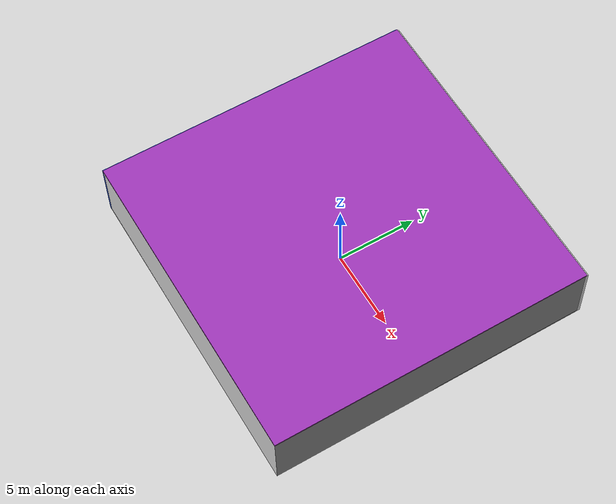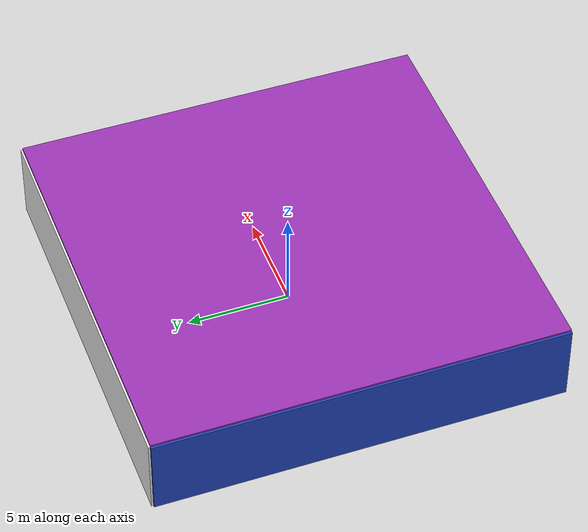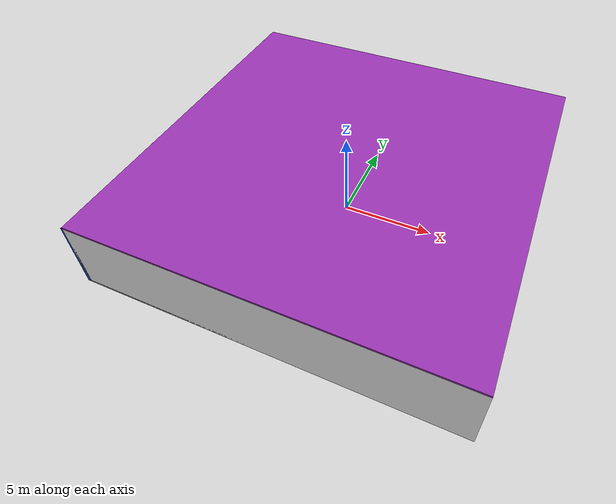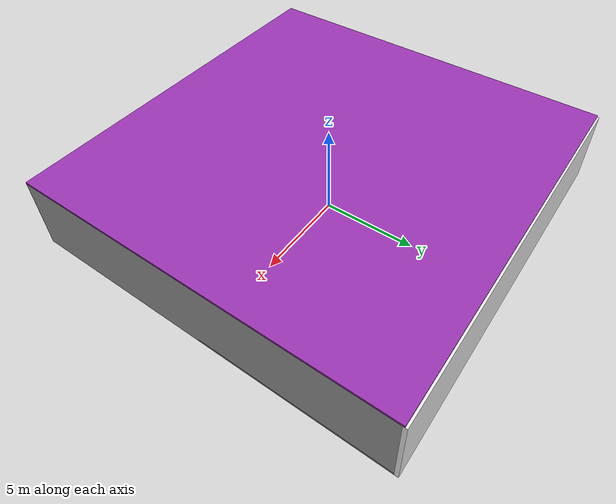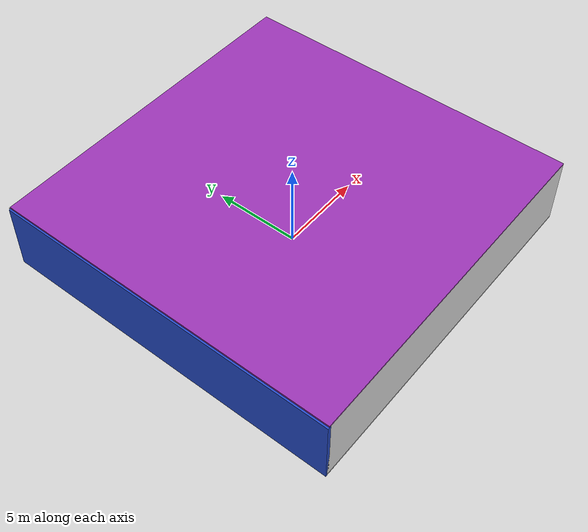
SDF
<sdf version="1.4">
 <world name="default">
  <physics type="ode">
   <max_step_size>0.001</max_step_size>
   <real_time_factor>1</real_time_factor>
   <real_time_update_rate>1000</real_time_update_rate>
   <gravity>0 0 -9.8</gravity>
  </physics>
  <scene><ambient>0.4 0.4 0.4 1</ambient><background>0.7 0.7 0.7 1</background><shadows>1</shadows></scene>
  <model name="Surrounding">
   <static>1</static>
   <link name="Ceiling">
    <collision name="Ceiling_Collision"><geometry><box><size>20 20 0.1</size></box></geometry></collision>
    <visual name="Ceiling_Visual">
     <geometry><box><size>20 20 0.1</size></box></geometry>
     <material>
      <script><uri>file://media/materials/scripts/gazebo.material</uri><name>Gazebo/PurpleGlow</name></script>
     </material>
    </visual>
    <pose>0 0 4.05 0 0 0</pose>
   </link>
   <link name="Wall_South">
    <collision name="Wall_South_Collision">
     <geometry><box><size>20 0 4</size></box></geometry>
     <pose>0 0 2 0 -0 0</pose>
    </collision>
    <visual name="Wall_South_Visual">
     <pose>0 0 2 0 -0 0</pose>
     <geometry><box><size>20 0 4</size></box></geometry>
     <material>
      <script><uri>file://media/materials/scripts/gazebo.material</uri><name>Gazebo/White</name></script>
     </material>
    </visual>
    <velocity_decay><linear>0</linear><angular>0</angular></velocity_decay>
    <pose>0 -10 0 0 -0 0</pose>
   </link>
   <link name="Wall_East">
    <collision name="Wall_21_Collision">
     <geometry><box><size>20 0 4</size></box></geometry>
     <pose>0 0 2 0 -0 0</pose>
    </collision>
    <visual name="Wall_21_Visual">
     <pose>0 0 2 0 -0 0</pose>
     <geometry><box><size>20 0 4</size></box></geometry>
     <material>
      <script><uri>file://media/materials/scripts/gazebo.material</uri><name>Gazebo/Grey</name></script>
     </material>
    </visual>
    <velocity_decay><linear>0</linear><angular>0</angular></velocity_decay>
    <pose>10 0 0 0 -0 1.5708</pose>
   </link>
   <link name="Wall_North">
    <collision name="Wall_22_Collision">
     <geometry><box><size>20 0.2 4</size></box></geometry>
     <pose>0 0 2 0 -0 0</pose>
    </collision>
    <visual name="Wall_22_Visual">
     <pose>0 0 2 0 -0 0</pose>
     <geometry><box><size>20 0.2 4</size></box></geometry>
     <material>
      <script><uri>file://media/materials/scripts/gazebo.material</uri><name>Gazebo/White</name></script>
     </material>
    </visual>
    <velocity_decay><linear>0</linear><angular>0</angular></velocity_decay>
    <pose>0 10 0 0 -0 0</pose>
   </link>
   <link name="Wall_West">
    <collision name="Wall_23_Collision">
     <geometry><box><size>20 0.2 4</size></box></geometry>
     <pose>0 0 2 0 -0 0</pose>
    </collision>
    <visual name="Wall_23_Visual">
     <pose>0 0 2 0 -0 0</pose>
     <geometry><box><size>20 0.2 4</size></box></geometry>
     <material>
      <script><uri>file://media/materials/scripts/gazebo.material</uri><name>Gazebo/Blue</name></script>
     </material>
    </visual>
    <velocity_decay><linear>0</linear><angular>0</angular></velocity_decay>
    <pose>-10 0 0 0 0 -1.5708</pose>
   </link>
   <link name="Ground_link">
    <collision name="collision">
     <pose>0 0 .05 0 -0 0</pose>
     <geometry><box><size>20 20 0.1</size></box></geometry>
    </collision>
    <visual name="visual">
     <pose>0 0 .05 0 -0 0</pose>
     <geometry><box><size>20 20 0.1</size></box></geometry>
     <material>
      <script><uri>file://media/materials/scripts/gazebo.material</uri><name>Gazebo/GreyTransparent</name></script>
     </material>
    </visual>
   </link>
   <static>1</static>
  </model>
  <spherical_coordinates>
   <surface_model>EARTH_WGS84</surface_model>
   <latitude_deg>0</latitude_deg>
   <longitude_deg>0</longitude_deg>
   <elevation>0</elevation>
   <heading_deg>0</heading_deg>
  </spherical_coordinates>
  <light name="lightball_0" type="diffuse">
   <diffuse>0.8 0.8 0.8 1</diffuse>
   <specular>0.2 0.2 0.2 1</specular>
   <attenuation>
    <range>100</range>
    <constant>0.7</constant>
    <linear>0.01</linear>
    <quadratic>0.001</quadratic>
   </attenuation>
   <direction>-0.5 0.1 -0.9</direction>
   <pose>8.59217577541 -9.13612303144 3.33989320014 0 0 0</pose>
  </light>
  <light name="lightball_1" type="diffuse">
   <diffuse>0.8 0.8 0.8 1</diffuse>
   <specular>0.2 0.2 0.2 1</specular>
   <attenuation>
    <range>100</range>
    <constant>0.7</constant>
    <linear>0.01</linear>
    <quadratic>0.001</quadratic>
   </attenuation>
   <direction>-0.5 0.1 -0.9</direction>
   <pose>-4.77271377528 -8.78771781854 3.08778579016 0 0 0</pose>
  </light>
  <include>
   <uri>model://construction_cone</uri>
   <pose>-5.1928156906 3.80557690751 0 0 0 0.240957608918</pose>
  </include>
  <include><uri>model://table</uri><pose>-5.30339221974 7.46928630463 0 0 0 1.28414161461</pose></include>
  <include><uri>model://table</uri><pose>-1.22577693914 2.48568110782 0 0 0 0.196916606071</pose></include>
  <include><uri>model://cabinet</uri><pose>2.06916964643 3.80905081006 0 0 0 2.77509038573</pose></include>
  <include>
   <uri>model://robocup_3Dsim_goal</uri>
   <pose>5.29834224272 1.36629477626 0 0 0 0.675527270761</pose>
  </include>
  <include>
   <uri>model://robocup_3Dsim_goal</uri>
   <pose>7.19284989038 -6.78407969 0 0 0 2.46957812925</pose>
  </include>
  <include>
   <uri>model://construction_cone</uri>
   <pose>6.81340738591 -2.31775600361 0 0 0 1.46333758223</pose>
  </include>
 </world>
</sdf>

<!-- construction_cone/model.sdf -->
<sdf version="1.5">
  <model name="Construction Cone">
    <link name="link">
      <collision name="collision">
        <geometry>
          <mesh>
            <scale>10 10 10</scale>
            <uri>file://isr-testbed/construction_cone/meshes/construction_cone.dae</uri>
          </mesh>
        </geometry>
      </collision>
      <visual name="visual">
        <geometry>
          <mesh>
            <scale>10 10 10</scale>
            <uri>file://isr-testbed/construction_cone/meshes/construction_cone.dae</uri>
          </mesh>
        </geometry>
      </visual>
    </link>
  </model>
</sdf>

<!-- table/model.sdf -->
<sdf version="1.5">
  <model name="table">
    <static>true</static>
    <link name="link">
      <collision name="surface">
        <pose>0 0 1.0 0 0 0</pose>
        <geometry>
          <box>
            <size>1.5 0.8 0.03</size>
          </box>
        </geometry>
        <surface>
          <friction>
            <ode>
              <mu>0.6</mu>
              <mu2>0.6</mu2>
            </ode>
          </friction>
        </surface>
      </collision>
      <visual name="visual1">
        <pose>0 0 1.0 0 0 0</pose>
        <geometry>
          <box>
            <size>1.5 0.8 0.03</size>
          </box>
        </geometry>
        <material>
          <script>
            <uri>model://media/materials/scripts/gazebo.material</uri>
            <name>Gazebo/Wood</name>
          </script>
        </material>
      </visual>
      <collision name="front_left_leg">
        <pose>0.68 0.38 0.5 0 0 0</pose>
        <geometry>
          <cylinder>
            <radius>0.02</radius>
            <length>1.0</length>
          </cylinder>
        </geometry>
      </collision>
      <visual name="front_left_leg">
        <pose>0.68 0.38 0.5 0 0 0</pose>
        <geometry>
          <cylinder>
            <radius>0.02</radius>
            <length>1.0</length>
          </cylinder>
        </geometry>
        <material>
          <script>
            <uri>model://media/materials/scripts/gazebo.material</uri>
            <name>Gazebo/Grey</name>
          </script>
        </material>
      </visual>
      <collision name="front_right_leg">
        <pose>0.68 -0.38 0.5 0 0 0</pose>
        <geometry>
          <cylinder>
            <radius>0.02</radius>
            <length>1.0</length>
          </cylinder>
        </geometry>
      </collision>
      <visual name="front_right_leg">
        <pose>0.68 -0.38 0.5 0 0 0</pose>
        <geometry>
          <cylinder>
            <radius>0.02</radius>
            <length>1.0</length>
          </cylinder>
        </geometry>
        <material>
          <script>
            <uri>model://media/materials/scripts/gazebo.material</uri>
            <name>Gazebo/Grey</name>
          </script>
        </material>
      </visual>
      <collision name="back_right_leg">
        <pose>-0.68 -0.38 0.5 0 0 0</pose>
        <geometry>
          <cylinder>
            <radius>0.02</radius>
            <length>1.0</length>
          </cylinder>
        </geometry>
      </collision>
      <visual name="back_right_leg">
        <pose>-0.68 -0.38 0.5 0 0 0</pose>
        <geometry>
          <cylinder>
            <radius>0.02</radius>
            <length>1.0</length>
          </cylinder>
        </geometry>
        <material>
          <script>
            <uri>model://media/materials/scripts/gazebo.material</uri>
            <name>Gazebo/Grey</name>
          </script>
        </material>
      </visual>
      <collision name="back_left_leg">
        <pose>-0.68 0.38 0.5 0 0 0</pose>
        <geometry>
          <cylinder>
            <radius>0.02</radius>
            <length>1.0</length>
          </cylinder>
        </geometry>
      </collision>
      <visual name="back_left_leg">
        <pose>-0.68 0.38 0.5 0 0 0</pose>
        <geometry>
          <cylinder>
            <radius>0.02</radius>
            <length>1.0</length>
          </cylinder>
        </geometry>
        <material>
          <script>
            <uri>model://media/materials/scripts/gazebo.material</uri>
            <name>Gazebo/Grey</name>
          </script>
        </material>
      </visual>
    </link>
  </model>
</sdf>

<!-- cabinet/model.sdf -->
<sdf version="1.5">
  <model name="cabinet">
    <static>true</static>
    <link name="cabinet_bottom_plate">
      <inertial>
        <pose>0 0 -1 0 0 0</pose>
        <inertia>
          <ixx>2.050000</ixx>
          <ixy>0</ixy>
          <ixz>0</ixz>
          <iyy>2.050000</iyy>
          <iyz>0</iyz>
          <izz>2.050000</izz>
        </inertia>
        <mass>25.000000</mass>
      </inertial>
      <collision name="cabinet_bottom_plate_geom">
        <pose>0 0 0.010000 0 0 0</pose>
        <geometry>
          <box>
            <size>0.450000 0.450000 0.020000</size>
          </box>
        </geometry>
      </collision>
      <visual name="cabinet_bottom_plate_geom_visual">
        <pose>0 0 0.010000 0 0 0</pose>
        <geometry>
          <box>
            <size>0.450000 0.450000 0.020000</size>
          </box>
        </geometry>
        <material>
          <script>
            <uri>model://media/materials/scripts/gazebo.material</uri>
            <name>Gazebo/Wood</name>
          </script>
        </material>
      </visual>
      <collision name="cabinet_bottom_plate_geom_cabinet_back_plate">
        <pose>0.235000 0 0.510000 0 0 0</pose>
        <geometry>
          <box>
            <size>0.020000 0.450000 1.020000</size>
          </box>
        </geometry>
      </collision>
      <visual name="cabinet_bottom_plate_geom_cabinet_back_plate_visual">
        <pose>0.235000 0 0.510000 0 0 0</pose>
        <geometry>
          <box>
            <size>0.020000 0.450000 1.020000</size>
          </box>
        </geometry>
        <material>
          <script>
            <uri>model://media/materials/scripts/gazebo.material</uri>
            <name>Gazebo/Wood</name>
          </script>
        </material>
      </visual>
      <collision name="cabinet_bottom_plate_geom_cabinet_left_plate">
        <pose>0 0.235000 0.510000 0 0 0</pose>
        <geometry>
          <box>
            <size>0.450000 0.020000 1.020000</size>
          </box>
        </geometry>
      </collision>
      <visual name="cabinet_bottom_plate_geom_cabinet_left_plate_visual">
        <pose>0 0.235000 0.510000 0 0 0</pose>
        <geometry>
          <box>
            <size>0.450000 0.020000 1.020000</size>
          </box>
        </geometry>
        <material>
          <script>
            <uri>model://media/materials/scripts/gazebo.material</uri>
            <name>Gazebo/Wood</name>
          </script>
        </material>
      </visual>
      <collision name="cabinet_bottom_plate_geom_cabinet_middle_plate">
        <pose>0 0 0.510000 0 0 0</pose>
        <geometry>
          <box>
            <size>0.450000 0.450000 0.020000</size>
          </box>
        </geometry>
      </collision>
      <visual name="cabinet_bottom_plate_geom_cabinet_middle_plate_visual">
        <pose>0 0 0.510000 0 0 0</pose>
        <geometry>
          <box>
            <size>0.450000 0.450000 0.020000</size>
          </box>
        </geometry>
        <material>
          <script>
            <uri>model://media/materials/scripts/gazebo.material</uri>
            <name>Gazebo/Wood</name>
          </script>
        </material>
      </visual>
      <collision name="cabinet_bottom_plate_geom_cabinet_right_plate">
        <pose>0 -0.235000 0.510000 0 0 0</pose>
        <geometry>
          <box>
            <size>0.450000 0.020000 1.020000</size>
          </box>
        </geometry>
      </collision>
      <visual name="cabinet_bottom_plate_geom_cabinet_right_plate_visual">
        <pose>0 -0.235000 0.510000 0 0 0</pose>
        <geometry>
          <box>
            <size>0.450000 0.020000 1.020000</size>
          </box>
        </geometry>
        <material>
          <script>
            <uri>model://media/materials/scripts/gazebo.material</uri>
            <name>Gazebo/Wood</name>
          </script>
        </material>
      </visual>
      <collision name="cabinet_bottom_plate_geom_cabinet_top_plate">
        <pose>0 0 1.010000 0 0 0</pose>
        <geometry>
          <box>
            <size>0.450000 0.450000 0.020000</size>
          </box>
        </geometry>
      </collision>
      <visual name="cabinet_bottom_plate_geom_cabinet_top_plate_visual">
        <pose>0 0 1.010000 0 0 0</pose>
        <geometry>
          <box>
            <size>0.450000 0.450000 0.020000</size>
          </box>
        </geometry>
        <material>
          <script>
            <uri>model://media/materials/scripts/gazebo.material</uri>
            <name>Gazebo/Wood</name>
          </script>
        </material>
      </visual>
    </link>
  </model>
</sdf>

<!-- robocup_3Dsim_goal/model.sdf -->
<sdf version="1.5">
  <model name="robocup_3d_goal">
    <static>true</static>
    <link name="left_post">
      <pose>0 1.05 0.45 0 0 0</pose>
      <collision name="collision">
        <geometry>
          <cylinder>
            <radius>0.05</radius>
            <length>0.9</length>
          </cylinder>
        </geometry>
      </collision>
      <visual name="visual">
        <geometry>
          <cylinder>
            <radius>0.05</radius>
            <length>0.9</length>
          </cylinder>
        </geometry>
        <material>
          <script>
            <uri>file://media/materials/scripts/gazebo.material</uri>
            <name>Gazebo/ZincYellow</name>
          </script>
        </material>
      </visual>
    </link>
    <link name="left_support_horiz_lower">
      <pose>0.30 1.05 0.01 0 0 0</pose>
      <collision name="collision">
        <geometry>
          <box>
            <size>0.50 0.02 0.02</size>
          </box>
        </geometry>
      </collision>
      <visual name="visual">
        <geometry>
          <box>
            <size>0.50 0.02 0.02</size>
          </box>
        </geometry>
        <material>
          <script>
            <uri>file://media/materials/scripts/gazebo.material</uri>
            <name>Gazebo/White</name>
          </script>
        </material>
      </visual>
    </link>
    <link name="left_support_horiz_upper">
      <pose>0.30 1.05 0.79 0 0 0</pose>
      <collision name="collision">
        <geometry>
          <box>
            <size>0.50 0.02 0.02</size>
          </box>
        </geometry>
      </collision>
      <visual name="visual">
        <geometry>
          <box>
            <size>0.50 0.02 0.02</size>
          </box>
        </geometry>
        <material>
          <script>
            <uri>file://media/materials/scripts/gazebo.material</uri>
            <name>Gazebo/White</name>
          </script>
        </material>
      </visual>
    </link>
    <link name="left_support_vertical">
      <pose>0.56 1.05 0.4 0 1.5708 0</pose>
      <collision name="collision">
        <geometry>
          <box>
            <size>0.80 0.02 0.02</size>
          </box>
        </geometry>
      </collision>
      <visual name="visual">
        <geometry>
          <box>
            <size>0.80 0.02 0.02</size>
          </box>
        </geometry>
        <material>
          <script>
            <uri>file://media/materials/scripts/gazebo.material</uri>
            <name>Gazebo/White</name>
          </script>
        </material>
      </visual>
    </link>
    <link name="right_support_horiz_lower">
      <pose>0.30 -1.05 0.01 0 0 0</pose>
      <collision name="collision">
        <geometry>
          <box>
            <size>0.50 0.02 0.02</size>
          </box>
        </geometry>
      </collision>
      <visual name="visual">
        <geometry>
          <box>
            <size>0.50 0.02 0.02</size>
          </box>
        </geometry>
        <material>
          <script>
            <uri>file://media/materials/scripts/gazebo.material</uri>
            <name>Gazebo/White</name>
          </script>
        </material>
      </visual>
    </link>
    <link name="right_support_horiz_upper">
      <pose>0.30 -1.05 0.79 0 0 0</pose>
      <collision name="collision">
        <geometry>
          <box>
            <size>0.50 0.02 0.02</size>
          </box>
        </geometry>
      </collision>
      <visual name="visual">
        <geometry>
          <box>
            <size>0.50 0.02 0.02</size>
          </box>
        </geometry>
        <material>
          <script>
            <uri>file://media/materials/scripts/gazebo.material</uri>
            <name>Gazebo/White</name>
          </script>
        </material>
      </visual>
    </link>
    <link name="right_support_vertical">
      <pose>0.56 -1.05 0.4 0 1.5708 0</pose>
      <collision name="collision">
        <geometry>
          <box>
            <size>0.80 0.02 0.02</size>
          </box>
        </geometry>
      </collision>
      <visual name="visual">
        <geometry>
          <box>
            <size>0.80 0.02 0.02</size>
          </box>
        </geometry>
        <material>
          <script>
            <uri>file://media/materials/scripts/gazebo.material</uri>
            <name>Gazebo/White</name>
          </script>
        </material>
      </visual>
    </link>
    <link name="center_support_horiz_lower">
      <pose>0.56 0 0.01 0 1.5708 0</pose>
      <collision name="collision">
        <geometry>
          <box>
            <size>0.02 2.08 0.02</size>
          </box>
        </geometry>
      </collision>
      <visual name="visual">
        <geometry>
          <box>
            <size>0.02 2.08 0.02</size>
          </box>
        </geometry>
        <material>
          <script>
            <uri>file://media/materials/scripts/gazebo.material</uri>
            <name>Gazebo/White</name>
          </script>
        </material>
      </visual>
    </link>
    <link name="center_support_horiz_upper">
      <pose>0.56 0 0.79 0 1.5708 0</pose>
      <collision name="collision">
        <geometry>
          <box>
            <size>0.02 2.08 0.02</size>
          </box>
        </geometry>
      </collision>
      <visual name="visual">
        <geometry>
          <box>
            <size>0.02 2.08 0.02</size>
          </box>
        </geometry>
        <material>
          <script>
            <uri>file://media/materials/scripts/gazebo.material</uri>
            <name>Gazebo/White</name>
          </script>
        </material>
      </visual>
    </link>
    <link name="right_post">
      <pose>0 -1.05 0.45 0 0 0</pose>
      <collision name="collision">
        <geometry>
          <cylinder>
            <radius>0.05</radius>
            <length>0.9</length>
          </cylinder>
        </geometry>
      </collision>
      <visual name="visual">
        <geometry>
          <cylinder>
            <radius>0.05</radius>
            <length>0.9</length>
          </cylinder>
        </geometry>
        <material>
          <script>
            <uri>file://media/materials/scripts/gazebo.material</uri>
            <name>Gazebo/ZincYellow</name>
          </script>
        </material>
      </visual>
    </link>
    <link name="crossbar">
      <pose>0 0 0.85 1.57 1.57 0</pose>
      <collision name="collision">
        <geometry>
          <cylinder>
            <radius>0.05</radius>
            <length>2.0</length>
          </cylinder>
        </geometry>
      </collision>
      <visual name="visual">
        <geometry>
          <cylinder>
            <radius>0.05</radius>
            <length>2.0</length>
          </cylinder>
        </geometry>
        <material>
          <script>
            <uri>file://media/materials/scripts/gazebo.material</uri>
            <name>Gazebo/ZincYellow</name>
          </script>
        </material>
      </visual>
    </link>
    <link name="center_net">
      <pose>0.56 0 0.40 0 0 0</pose>
      <collision name="collision">
        <geometry>
          <box>
            <size>0.01 2.1 0.80</size>
          </box>
        </geometry>
      </collision>
      <visual name="visual">
        <geometry>
          <box>
            <size>0.01 2.1 0.80</size>
          </box>
        </geometry>
        <material>
          <script>
            <uri>model://../model_source/models/robocup09_spl_field/materials/scripts/</uri>
            <uri>model://../model_source/models/robocup09_spl_field/materials/textures/</uri>
            <name>RoboCup/Net</name>
          </script>
        </material>
      </visual>
    </link>
    <link name="left_net">
      <pose>0.30 1.05 0.40 0 0 0</pose>
      <collision name="collision">
        <geometry>
          <box>
            <size>0.50 0.01 0.76</size>
          </box>
        </geometry>
      </collision>
      <visual name="visual">
        <geometry>
          <box>
            <size>0.50 0.01 0.76</size>
          </box>
        </geometry>
        <material>
          <script>
            <uri>model://../model_source/models/robocup09_spl_field/materials/scripts/</uri>
            <uri>model://../model_source/models/robocup09_spl_field/materials/textures/</uri>
            <name>RoboCup/Net</name>
          </script>
        </material>
      </visual>
    </link>
    <link name="right_net">
      <pose>0.30 -1.05 0.40 0 0 0</pose>
      <collision name="collision">
        <geometry>
          <box>
            <size>0.50 0.01 0.76</size>
          </box>
        </geometry>
      </collision>
      <visual name="visual">
        <geometry>
          <box>
            <size>0.50 0.01 0.76</size>
          </box>
        </geometry>
        <material>
          <script>
            <uri>model://../model_source/models/robocup09_spl_field/materials/scripts/</uri>
            <uri>model://../model_source/models/robocup09_spl_field/materials/textures/</uri>
            <name>RoboCup/Net</name>
          </script>
        </material>
      </visual>
    </link>
  </model>
</sdf>
